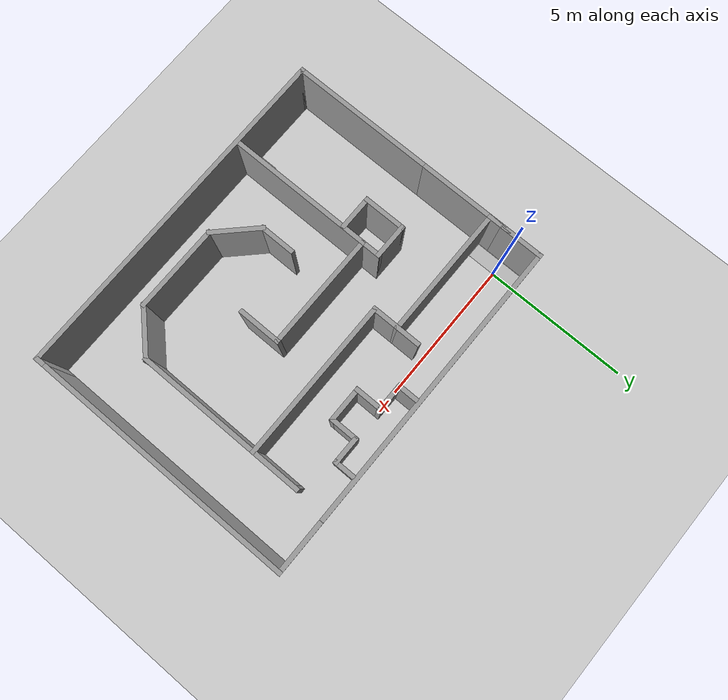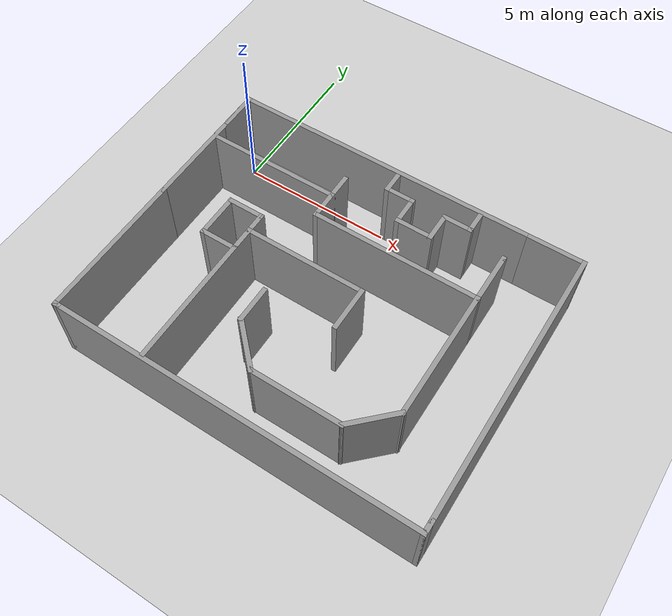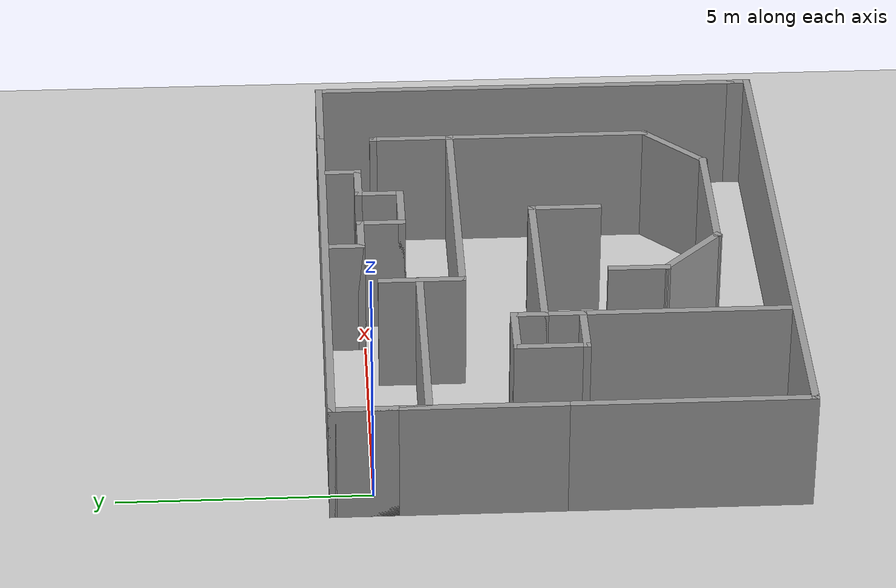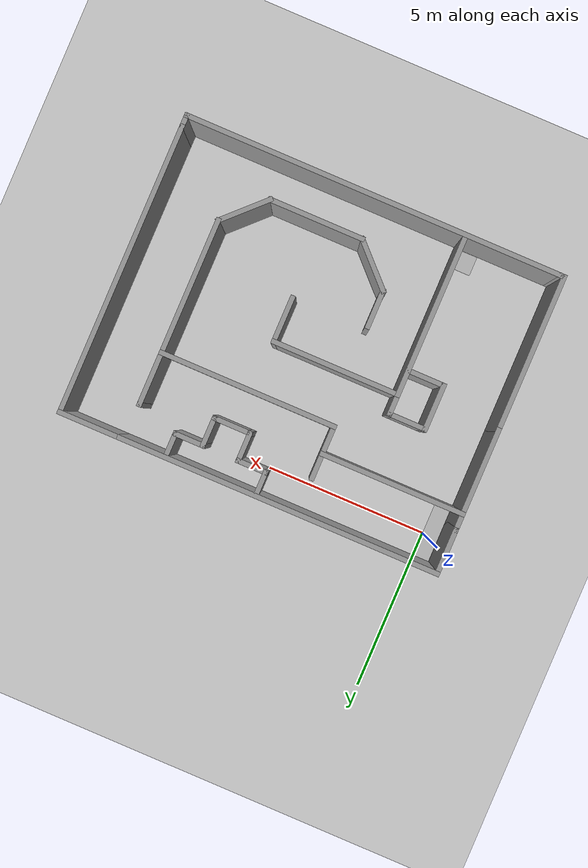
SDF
<sdf version="1.6">
 <world name="default">
  <light name="sun" type="directional">
   <pose>0 0 10 0 -0 0</pose>
   <diffuse>0.8 0.8 0.8 1</diffuse>
   <specular>0.2 0.2 0.2 1</specular>
   <attenuation>
    <range>1000</range>
    <constant>0.9</constant>
    <linear>0.01</linear>
    <quadratic>0.001</quadratic>
   </attenuation>
   <direction>-0.5 0.1 -0.9</direction>
  </light>
  <model name="ground_plane">
   <static>1</static>
   <link name="link">
    <collision name="collision">
     <geometry><plane><normal>0 0 1</normal><size>100 100</size></plane></geometry>
     <surface>
      <contact><collide_bitmask>65535</collide_bitmask></contact>
      <friction><ode><mu>100</mu><mu2>50</mu2></ode></friction>
     </surface>
    </collision>
    <visual name="visual">
     <cast_shadows>0</cast_shadows>
     <geometry><plane><normal>0 0 1</normal><size>100 100</size></plane></geometry>
     <material>
      <script><uri>file://media/materials/scripts/gazebo.material</uri><name>Gazebo/Grey</name></script>
     </material>
    </visual>
   </link>
  </model>
  <gravity>0 0 -9.8</gravity>
  <magnetic_field>6e-06 2.3e-05 -4.2e-05</magnetic_field>
  <atmosphere type="adiabatic"/>
  <physics name="default_physics" default="0" type="ode">
   <max_step_size>0.001</max_step_size>
   <real_time_factor>1</real_time_factor>
   <real_time_update_rate>1000</real_time_update_rate>
  </physics>
  <scene><ambient>0.4 0.4 0.4 1</ambient><background>0.7 0.7 0.7 1</background><shadows>1</shadows></scene>
  <audio><device>default</device></audio>
  <spherical_coordinates>
   <surface_model>EARTH_WGS84</surface_model>
   <latitude_deg>0</latitude_deg>
   <longitude_deg>0</longitude_deg>
   <elevation>0</elevation>
   <heading_deg>0</heading_deg>
  </spherical_coordinates>
  <model name="kaohe">
   <pose>5.26606 -3.80557 0 0 -0 3.14154</pose>
   <link name="Wall_0">
    <collision name="Wall_0_Collision">
     <geometry><box><size>10 0.15 2.5</size></box></geometry>
     <pose>0 0 1.25 0 -0 0</pose>
    </collision>
    <visual name="Wall_0_Visual">
     <pose>0 0 1.25 0 -0 0</pose>
     <geometry><box><size>10 0.15 2.5</size></box></geometry>
     <material>
      <script><uri>file://media/materials/scripts/gazebo.material</uri><name>Gazebo/Grey</name></script>
      <ambient>1 1 1 1</ambient>
     </material>
     <meta><layer>0</layer></meta>
    </visual>
    <pose>0.925 -4.6 0 0 -0 0</pose>
   </link>
   <link name="Wall_10">
    <collision name="Wall_10_Collision">
     <geometry><box><size>2 0.15 2.5</size></box></geometry>
     <pose>0 0 1.25 0 -0 0</pose>
    </collision>
    <visual name="Wall_10_Visual">
     <pose>0 0 1.25 0 -0 0</pose>
     <geometry><box><size>2 0.15 2.5</size></box></geometry>
     <material>
      <script><uri>file://media/materials/scripts/gazebo.material</uri><name>Gazebo/Grey</name></script>
      <ambient>1 1 1 1</ambient>
     </material>
     <meta><layer>0</layer></meta>
    </visual>
    <pose>-4.925 -4.6 0 0 -0 3.14159</pose>
   </link>
   <link name="Wall_13">
    <collision name="Wall_13_Collision">
     <geometry><box><size>4.5 0.15 2.5</size></box></geometry>
     <pose>0 0 1.25 0 -0 0</pose>
    </collision>
    <visual name="Wall_13_Visual">
     <pose>0 0 1.25 0 -0 0</pose>
     <geometry><box><size>4.5 0.15 2.5</size></box></geometry>
     <material>
      <script><uri>file://media/materials/scripts/gazebo.material</uri><name>Gazebo/Grey</name></script>
      <ambient>1 1 1 1</ambient>
     </material>
     <meta><layer>0</layer></meta>
    </visual>
    <pose>3.675 -2.75 0 0 -0 3.14159</pose>
   </link>
   <link name="Wall_18">
    <collision name="Wall_18_Collision">
     <geometry><box><size>5.5 0.15 2.5</size></box></geometry>
     <pose>0 0 1.25 0 -0 0</pose>
    </collision>
    <visual name="Wall_18_Visual">
     <pose>0 0 1.25 0 -0 0</pose>
     <geometry><box><size>5.5 0.15 2.5</size></box></geometry>
     <material>
      <script><uri>file://media/materials/scripts/gazebo.material</uri><name>Gazebo/Grey</name></script>
      <ambient>1 1 1 1</ambient>
     </material>
     <meta><layer>0</layer></meta>
    </visual>
    <pose>-1.175 -1.9 0 0 -0 3.14159</pose>
   </link>
   <link name="Wall_19">
    <collision name="Wall_19_Collision">
     <geometry><box><size>1.75 0.15 2.5</size></box></geometry>
     <pose>0 0 1.25 0 -0 0</pose>
    </collision>
    <visual name="Wall_19_Visual">
     <pose>0 0 1.25 0 -0 0</pose>
     <geometry><box><size>1.75 0.15 2.5</size></box></geometry>
     <material>
      <script><uri>file://media/materials/scripts/gazebo.material</uri><name>Gazebo/Grey</name></script>
      <ambient>1 1 1 1</ambient>
     </material>
     <meta><layer>0</layer></meta>
    </visual>
    <pose>-3.85 -2.7 0 0 -0 -1.5708</pose>
   </link>
   <link name="Wall_2">
    <collision name="Wall_2_Collision">
     <geometry><box><size>1.5 0.15 2.5</size></box></geometry>
     <pose>0 0 1.25 0 -0 0</pose>
    </collision>
    <visual name="Wall_2_Visual">
     <pose>0 0 1.25 0 -0 0</pose>
     <geometry><box><size>1.5 0.15 2.5</size></box></geometry>
     <material>
      <script><uri>file://media/materials/scripts/gazebo.material</uri><name>Gazebo/Grey</name></script>
      <ambient>1 1 1 1</ambient>
     </material>
     <meta><layer>0</layer></meta>
    </visual>
    <pose>5.85 -3.925 0 0 -0 1.5708</pose>
   </link>
   <link name="Wall_21">
    <collision name="Wall_21_Collision">
     <geometry><box><size>0.15 0.15 2.5</size></box></geometry>
     <pose>0 0 1.25 0 -0 0</pose>
    </collision>
    <visual name="Wall_21_Visual">
     <pose>0 0 1.25 0 -0 0</pose>
     <geometry><box><size>0.15 0.15 2.5</size></box></geometry>
     <material>
      <script><uri>file://media/materials/scripts/gazebo.material</uri><name>Gazebo/Grey</name></script>
      <ambient>1 1 1 1</ambient>
     </material>
     <meta><layer>0</layer></meta>
    </visual>
    <pose>-3.85 -3.5 0 0 -0 0</pose>
   </link>
   <link name="Wall_23">
    <collision name="Wall_23_Collision">
     <geometry><box><size>1.75 0.15 2.5</size></box></geometry>
     <pose>0 0 1.25 0 -0 0</pose>
    </collision>
    <visual name="Wall_23_Visual">
     <pose>0 0 1.25 0 -0 0</pose>
     <geometry><box><size>1.75 0.15 2.5</size></box></geometry>
     <material>
      <script><uri>file://media/materials/scripts/gazebo.material</uri><name>Gazebo/Grey</name></script>
      <ambient>1 1 1 1</ambient>
     </material>
     <meta><layer>0</layer></meta>
    </visual>
    <pose>1.5 -2.7 0 0 -0 -1.5708</pose>
   </link>
   <link name="Wall_25">
    <collision name="Wall_25_Collision">
     <geometry><box><size>0.75 0.15 2.5</size></box></geometry>
     <pose>0 0 1.25 0 -0 0</pose>
    </collision>
    <visual name="Wall_25_Visual">
     <pose>0 0 1.25 0 -0 0</pose>
     <geometry><box><size>0.75 0.15 2.5</size></box></geometry>
     <material>
      <script><uri>file://media/materials/scripts/gazebo.material</uri><name>Gazebo/Grey</name></script>
      <ambient>1 1 1 1</ambient>
     </material>
     <meta><layer>0</layer></meta>
    </visual>
    <pose>0.220431 -4.16953 0 0 -0 1.5708</pose>
   </link>
   <link name="Wall_3">
    <collision name="Wall_3_Collision">
     <geometry><box><size>0.15 0.15 2.5</size></box></geometry>
     <pose>0 0 1.25 0 -0 0</pose>
    </collision>
    <visual name="Wall_3_Visual">
     <pose>0 0 1.25 0 -0 0</pose>
     <geometry><box><size>0.15 0.15 2.5</size></box></geometry>
     <material>
      <script><uri>file://media/materials/scripts/gazebo.material</uri><name>Gazebo/Grey</name></script>
      <ambient>1 1 1 1</ambient>
     </material>
     <meta><layer>0</layer></meta>
    </visual>
    <pose>5.85 -3.25 0 0 -0 0</pose>
   </link>
   <link name="Wall_40">
    <collision name="Wall_40_Collision">
     <geometry><box><size>1 0.15 2.5</size></box></geometry>
     <pose>0 0 1.25 0 -0 0</pose>
    </collision>
    <visual name="Wall_40_Visual">
     <pose>0 0 1.25 0 -0 0</pose>
     <geometry><box><size>1 0.15 2.5</size></box></geometry>
     <material>
      <script><uri>file://media/materials/scripts/gazebo.material</uri><name>Gazebo/Grey</name></script>
      <ambient>1 1 1 1</ambient>
     </material>
     <meta><layer>0</layer></meta>
    </visual>
    <pose>-0.204569 -3.86953 0 0 -0 3.14159</pose>
   </link>
   <link name="Wall_41">
    <collision name="Wall_41_Collision">
     <geometry><box><size>1 0.15 2.5</size></box></geometry>
     <pose>0 0 1.25 0 -0 0</pose>
    </collision>
    <visual name="Wall_41_Visual">
     <pose>0 0 1.25 0 -0 0</pose>
     <geometry><box><size>1 0.15 2.5</size></box></geometry>
     <material>
      <script><uri>file://media/materials/scripts/gazebo.material</uri><name>Gazebo/Grey</name></script>
      <ambient>1 1 1 1</ambient>
     </material>
     <meta><layer>0</layer></meta>
    </visual>
    <pose>-0.629569 -3.44453 0 0 -0 1.5708</pose>
   </link>
   <link name="Wall_42">
    <collision name="Wall_42_Collision">
     <geometry><box><size>1.25 0.15 2.5</size></box></geometry>
     <pose>0 0 1.25 0 -0 0</pose>
    </collision>
    <visual name="Wall_42_Visual">
     <pose>0 0 1.25 0 -0 0</pose>
     <geometry><box><size>1.25 0.15 2.5</size></box></geometry>
     <material>
      <script><uri>file://media/materials/scripts/gazebo.material</uri><name>Gazebo/Grey</name></script>
      <ambient>1 1 1 1</ambient>
     </material>
     <meta><layer>0</layer></meta>
    </visual>
    <pose>-1.17957 -3.01953 0 0 -0 3.14159</pose>
   </link>
   <link name="Wall_43">
    <collision name="Wall_43_Collision">
     <geometry><box><size>1 0.15 2.5</size></box></geometry>
     <pose>0 0 1.25 0 -0 0</pose>
    </collision>
    <visual name="Wall_43_Visual">
     <pose>0 0 1.25 0 -0 0</pose>
     <geometry><box><size>1 0.15 2.5</size></box></geometry>
     <material>
      <script><uri>file://media/materials/scripts/gazebo.material</uri><name>Gazebo/Grey</name></script>
      <ambient>1 1 1 1</ambient>
     </material>
     <meta><layer>0</layer></meta>
    </visual>
    <pose>-1.72957 -3.44453 0 0 -0 -1.5708</pose>
   </link>
   <link name="Wall_46">
    <collision name="Wall_46_Collision">
     <geometry><box><size>1 0.15 2.5</size></box></geometry>
     <pose>0 0 1.25 0 -0 0</pose>
    </collision>
    <visual name="Wall_46_Visual">
     <pose>0 0 1.25 0 -0 0</pose>
     <geometry><box><size>1 0.15 2.5</size></box></geometry>
     <material>
      <script><uri>file://media/materials/scripts/gazebo.material</uri><name>Gazebo/Grey</name></script>
      <ambient>1 1 1 1</ambient>
     </material>
     <meta><layer>0</layer></meta>
    </visual>
    <pose>-2.15457 -3.86953 0 0 -0 3.14159</pose>
   </link>
   <link name="Wall_47">
    <collision name="Wall_47_Collision">
     <geometry><box><size>0.75 0.15 2.5</size></box></geometry>
     <pose>0 0 1.25 0 -0 0</pose>
    </collision>
    <visual name="Wall_47_Visual">
     <pose>0 0 1.25 0 -0 0</pose>
     <geometry><box><size>0.75 0.15 2.5</size></box></geometry>
     <material>
      <script><uri>file://media/materials/scripts/gazebo.material</uri><name>Gazebo/Grey</name></script>
      <ambient>1 1 1 1</ambient>
     </material>
     <meta><layer>0</layer></meta>
    </visual>
    <pose>-2.57957 -4.16953 0 0 -0 -1.5708</pose>
   </link>
   <link name="Wall_49">
    <collision name="Wall_49_Collision">
     <geometry><box><size>9 0.15 2.5</size></box></geometry>
     <pose>0 0 1.25 0 -0 0</pose>
    </collision>
    <visual name="Wall_49_Visual">
     <pose>0 0 1.25 0 -0 0</pose>
     <geometry><box><size>9 0.15 2.5</size></box></geometry>
     <material>
      <script><uri>file://media/materials/scripts/gazebo.material</uri><name>Gazebo/Grey</name></script>
      <ambient>1 1 1 1</ambient>
     </material>
     <meta><layer>0</layer></meta>
    </visual>
    <pose>-5.85 -0.175 0 0 -0 1.5708</pose>
   </link>
   <link name="Wall_5">
    <collision name="Wall_5_Collision">
     <geometry><box><size>3.25 0.15 2.5</size></box></geometry>
     <pose>0 0 1.25 0 -0 0</pose>
    </collision>
    <visual name="Wall_5_Visual">
     <pose>0 0 1.25 0 -0 0</pose>
     <geometry><box><size>3.25 0.15 2.5</size></box></geometry>
     <material>
      <script><uri>file://media/materials/scripts/gazebo.material</uri><name>Gazebo/Grey</name></script>
      <ambient>1 1 1 1</ambient>
     </material>
     <meta><layer>0</layer></meta>
    </visual>
    <pose>5.85 -1.7 0 0 -0 1.5708</pose>
   </link>
   <link name="Wall_51">
    <collision name="Wall_51_Collision">
     <geometry><box><size>4.25 0.15 2.5</size></box></geometry>
     <pose>0 0 1.25 0 -0 0</pose>
    </collision>
    <visual name="Wall_51_Visual">
     <pose>0 0 1.25 0 -0 0</pose>
     <geometry><box><size>4.25 0.15 2.5</size></box></geometry>
     <material>
      <script><uri>file://media/materials/scripts/gazebo.material</uri><name>Gazebo/Grey</name></script>
      <ambient>1 1 1 1</ambient>
     </material>
     <meta><layer>0</layer></meta>
    </visual>
    <pose>-3.85 0.15 0 0 -0 1.5708</pose>
   </link>
   <link name="Wall_53">
    <collision name="Wall_53_Collision">
     <geometry><box><size>1.75 0.15 2.5</size></box></geometry>
     <pose>0 0 1.25 0 -0 0</pose>
    </collision>
    <visual name="Wall_53_Visual">
     <pose>0 0 1.25 0 -0 0</pose>
     <geometry><box><size>1.75 0.15 2.5</size></box></geometry>
     <material>
      <script><uri>file://media/materials/scripts/gazebo.material</uri><name>Gazebo/Grey</name></script>
      <ambient>1 1 1 1</ambient>
     </material>
     <meta><layer>0</layer></meta>
    </visual>
    <pose>-3.28431 2.76568 0 0 -0 0.785398</pose>
   </link>
   <link name="Wall_54">
    <collision name="Wall_54_Collision">
     <geometry><box><size>3 0.15 2.5</size></box></geometry>
     <pose>0 0 1.25 0 -0 0</pose>
    </collision>
    <visual name="Wall_54_Visual">
     <pose>0 0 1.25 0 -0 0</pose>
     <geometry><box><size>3 0.15 2.5</size></box></geometry>
     <material>
      <script><uri>file://media/materials/scripts/gazebo.material</uri><name>Gazebo/Grey</name></script>
      <ambient>1 1 1 1</ambient>
     </material>
     <meta><layer>0</layer></meta>
    </visual>
    <pose>-1.29363 3.33137 0 0 -0 0</pose>
   </link>
   <link name="Wall_55">
    <collision name="Wall_55_Collision">
     <geometry><box><size>1.75 0.15 2.5</size></box></geometry>
     <pose>0 0 1.25 0 -0 0</pose>
    </collision>
    <visual name="Wall_55_Visual">
     <pose>0 0 1.25 0 -0 0</pose>
     <geometry><box><size>1.75 0.15 2.5</size></box></geometry>
     <material>
      <script><uri>file://media/materials/scripts/gazebo.material</uri><name>Gazebo/Grey</name></script>
      <ambient>1 1 1 1</ambient>
     </material>
     <meta><layer>0</layer></meta>
    </visual>
    <pose>0.697057 2.76568 0 0 -0 -0.785398</pose>
   </link>
   <link name="Wall_56">
    <collision name="Wall_56_Collision">
     <geometry><box><size>1.25 0.15 2.5</size></box></geometry>
     <pose>0 0 1.25 0 -0 0</pose>
    </collision>
    <visual name="Wall_56_Visual">
     <pose>0 0 1.25 0 -0 0</pose>
     <geometry><box><size>1.25 0.15 2.5</size></box></geometry>
     <material>
      <script><uri>file://media/materials/scripts/gazebo.material</uri><name>Gazebo/Grey</name></script>
      <ambient>1 1 1 1</ambient>
     </material>
     <meta><layer>0</layer></meta>
    </visual>
    <pose>1.26274 1.65 0 0 -0 -1.5708</pose>
   </link>
   <link name="Wall_58">
    <collision name="Wall_58_Collision">
     <geometry><box><size>0.5 0.15 2.5</size></box></geometry>
     <pose>0 0 1.25 0 -0 0</pose>
    </collision>
    <visual name="Wall_58_Visual">
     <pose>0 0 1.25 0 -0 0</pose>
     <geometry><box><size>0.5 0.15 2.5</size></box></geometry>
     <material>
      <script><uri>file://media/materials/scripts/gazebo.material</uri><name>Gazebo/Grey</name></script>
      <ambient>1 1 1 1</ambient>
     </material>
     <meta><layer>0</layer></meta>
    </visual>
    <pose>-5.85 4.425 0 0 -0 1.5708</pose>
   </link>
   <link name="Wall_61">
    <collision name="Wall_61_Collision">
     <geometry><box><size>11.75 0.15 2.5</size></box></geometry>
     <pose>0 0 1.25 0 -0 0</pose>
    </collision>
    <visual name="Wall_61_Visual">
     <pose>0 0 1.25 0 -0 0</pose>
     <geometry><box><size>11.75 0.15 2.5</size></box></geometry>
     <material>
      <script><uri>file://media/materials/scripts/gazebo.material</uri><name>Gazebo/Grey</name></script>
      <ambient>1 1 1 1</ambient>
     </material>
     <meta><layer>0</layer></meta>
    </visual>
    <pose>-0.05 4.6 0 0 -0 0</pose>
   </link>
   <link name="Wall_62">
    <collision name="Wall_62_Collision">
     <geometry><box><size>0.25 0.15 2.5</size></box></geometry>
     <pose>0 0 1.25 0 -0 0</pose>
    </collision>
    <visual name="Wall_62_Visual">
     <pose>0 0 1.25 0 -0 0</pose>
     <geometry><box><size>0.25 0.15 2.5</size></box></geometry>
     <material>
      <script><uri>file://media/materials/scripts/gazebo.material</uri><name>Gazebo/Grey</name></script>
      <ambient>1 1 1 1</ambient>
     </material>
     <meta><layer>0</layer></meta>
    </visual>
    <pose>5.8 4.6 0 0 -0 0</pose>
   </link>
   <link name="Wall_63">
    <collision name="Wall_63_Collision">
     <geometry><box><size>4.9 0.15 2.5</size></box></geometry>
     <pose>0 0 1.25 0 -0 0</pose>
    </collision>
    <visual name="Wall_63_Visual">
     <pose>0 0 1.25 0 -0 0</pose>
     <geometry><box><size>4.9 0.15 2.5</size></box></geometry>
     <material>
      <script><uri>file://media/materials/scripts/gazebo.material</uri><name>Gazebo/Grey</name></script>
      <ambient>1 1 1 1</ambient>
     </material>
     <meta><layer>0</layer></meta>
    </visual>
    <pose>5.85 2.225 0 0 -0 -1.5708</pose>
   </link>
   <link name="Wall_65">
    <collision name="Wall_65_Collision">
     <geometry><box><size>5 0.15 2.5</size></box></geometry>
     <pose>0 0 1.25 0 -0 0</pose>
    </collision>
    <visual name="Wall_65_Visual">
     <pose>0 0 1.25 0 -0 0</pose>
     <geometry><box><size>5 0.15 2.5</size></box></geometry>
     <material>
      <script><uri>file://media/materials/scripts/gazebo.material</uri><name>Gazebo/Grey</name></script>
      <ambient>1 1 1 1</ambient>
     </material>
     <meta><layer>0</layer></meta>
    </visual>
    <pose>2.81466 2.07527 0 0 -0 -1.5708</pose>
   </link>
   <link name="Wall_66">
    <collision name="Wall_66_Collision">
     <geometry><box><size>4 0.15 2.5</size></box></geometry>
     <pose>0 0 1.25 0 -0 0</pose>
    </collision>
    <visual name="Wall_66_Visual">
     <pose>0 0 1.25 0 -0 0</pose>
     <geometry><box><size>4 0.15 2.5</size></box></geometry>
     <material>
      <script><uri>file://media/materials/scripts/gazebo.material</uri><name>Gazebo/Grey</name></script>
      <ambient>1 1 1 1</ambient>
     </material>
     <meta><layer>0</layer></meta>
    </visual>
    <pose>0.889664 -0.349734 0 0 -0 3.14159</pose>
   </link>
   <link name="Wall_67">
    <collision name="Wall_67_Collision">
     <geometry><box><size>1.5 0.15 2.5</size></box></geometry>
     <pose>0 0 1.25 0 -0 0</pose>
    </collision>
    <visual name="Wall_67_Visual">
     <pose>0 0 1.25 0 -0 0</pose>
     <geometry><box><size>1.5 0.15 2.5</size></box></geometry>
     <material>
      <script><uri>file://media/materials/scripts/gazebo.material</uri><name>Gazebo/Grey</name></script>
      <ambient>1 1 1 1</ambient>
     </material>
     <meta><layer>0</layer></meta>
    </visual>
    <pose>-1.03534 0.325266 0 0 -0 1.5708</pose>
   </link>
   <link name="Wall_69">
    <collision name="Wall_69_Collision">
     <geometry><box><size>0.75 0.15 2.5</size></box></geometry>
     <pose>0 0 1.25 0 -0 0</pose>
    </collision>
    <visual name="Wall_69_Visual">
     <pose>0 0 1.25 0 -0 0</pose>
     <geometry><box><size>0.75 0.15 2.5</size></box></geometry>
     <material>
      <script><uri>file://media/materials/scripts/gazebo.material</uri><name>Gazebo/Grey</name></script>
      <ambient>1 1 1 1</ambient>
     </material>
     <meta><layer>0</layer></meta>
    </visual>
    <pose>2.81466 -0.649734 0 0 -0 -1.5708</pose>
   </link>
   <link name="Wall_7">
    <collision name="Wall_7_Collision">
     <geometry><box><size>2 0.15 2.5</size></box></geometry>
     <pose>0 0 1.25 0 -0 0</pose>
    </collision>
    <visual name="Wall_7_Visual">
     <pose>0 0 1.25 0 -0 0</pose>
     <geometry><box><size>2 0.15 2.5</size></box></geometry>
     <material>
      <script><uri>file://media/materials/scripts/gazebo.material</uri><name>Gazebo/Grey</name></script>
      <ambient>1 1 1 1</ambient>
     </material>
     <meta><layer>0</layer></meta>
    </visual>
    <pose>5.85 -3.675 0 0 -0 1.5708</pose>
   </link>
   <link name="Wall_70">
    <collision name="Wall_70_Collision">
     <geometry><box><size>1.25 0.15 2.5</size></box></geometry>
     <pose>0 0 1.25 0 -0 0</pose>
    </collision>
    <visual name="Wall_70_Visual">
     <pose>0 0 1.25 0 -0 0</pose>
     <geometry><box><size>1.25 0.15 2.5</size></box></geometry>
     <material>
      <script><uri>file://media/materials/scripts/gazebo.material</uri><name>Gazebo/Grey</name></script>
      <ambient>1 1 1 1</ambient>
     </material>
     <meta><layer>0</layer></meta>
    </visual>
    <pose>3.36466 -0.949734 0 0 -0 0</pose>
   </link>
   <link name="Wall_71">
    <collision name="Wall_71_Collision">
     <geometry><box><size>1.5 0.15 2.5</size></box></geometry>
     <pose>0 0 1.25 0 -0 0</pose>
    </collision>
    <visual name="Wall_71_Visual">
     <pose>0 0 1.25 0 -0 0</pose>
     <geometry><box><size>1.5 0.15 2.5</size></box></geometry>
     <material>
      <script><uri>file://media/materials/scripts/gazebo.material</uri><name>Gazebo/Grey</name></script>
      <ambient>1 1 1 1</ambient>
     </material>
     <meta><layer>0</layer></meta>
    </visual>
    <pose>3.91466 -0.274734 0 0 -0 1.5708</pose>
   </link>
   <link name="Wall_72">
    <collision name="Wall_72_Collision">
     <geometry><box><size>1.25 0.15 2.5</size></box></geometry>
     <pose>0 0 1.25 0 -0 0</pose>
    </collision>
    <visual name="Wall_72_Visual">
     <pose>0 0 1.25 0 -0 0</pose>
     <geometry><box><size>1.25 0.15 2.5</size></box></geometry>
     <material>
      <script><uri>file://media/materials/scripts/gazebo.material</uri><name>Gazebo/Grey</name></script>
      <ambient>1 1 1 1</ambient>
     </material>
     <meta><layer>0</layer></meta>
    </visual>
    <pose>3.36466 0.400266 0 0 -0 3.14159</pose>
   </link>
   <static>1</static>
  </model>
  <model name="start_plane">
   <static>1</static>
   <link name="link">
    <collision name="collision">
     <geometry><plane><normal>0 0 1</normal><size>0.5 1.8</size></plane></geometry>
     <surface><friction><ode><mu>100</mu><mu2>50</mu2></ode></friction></surface>
    </collision>
    <visual name="visual">
     <cast_shadows>0</cast_shadows>
     <geometry><plane><normal>0 0 1</normal><size>0.5 1.8</size></plane></geometry>
     <material>
      <script>
       <uri>model://start_plane/materials/scripts</uri>
       <uri>model://start_plane/materials/textures/</uri>
       <name>StartPlane/Image</name>
      </script>
     </material>
    </visual>
   </link>
   <pose>-0.249663 -0.074297 0 0 -0 0</pose>
  </model>
  <model name="end_plane">
   <static>1</static>
   <link name="link">
    <collision name="collision">
     <geometry><plane><normal>0 0 1</normal><size>0.6 0.6</size></plane></geometry>
     <surface><friction><ode><mu>100</mu><mu2>50</mu2></ode></friction></surface>
    </collision>
    <visual name="visual">
     <cast_shadows>0</cast_shadows>
     <geometry><plane><normal>0 0 1</normal><size>0.6 0.6</size></plane></geometry>
     <material>
      <script>
       <uri>model://end_plane/materials/scripts</uri>
       <uri>model://end_plane/materials/textures/</uri>
       <name>EndPlane/Image</name>
      </script>
     </material>
    </visual>
   </link>
   <pose>2.06282 -8.02433 0 0 -0 0</pose>
  </model>
 </world>
</sdf>
